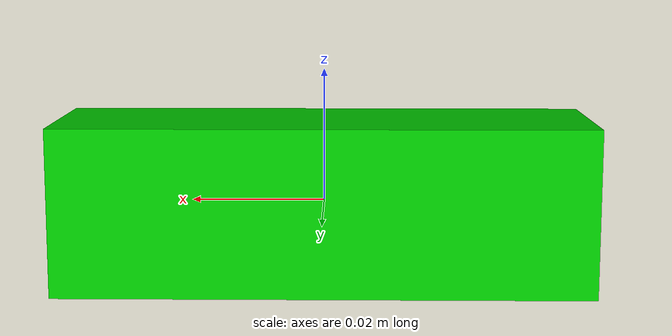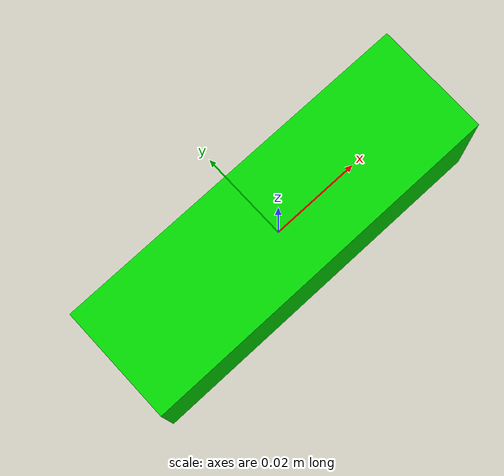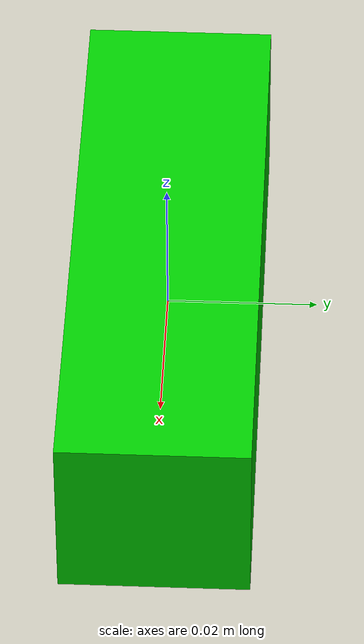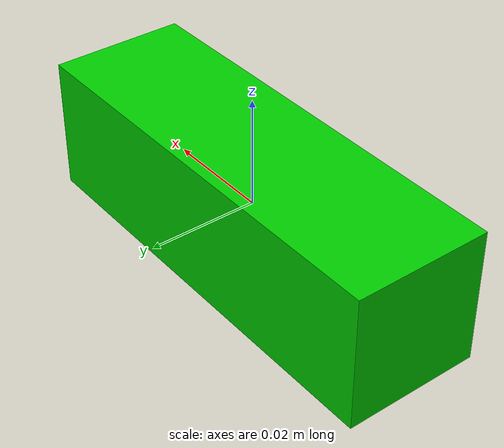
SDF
<?xml version="1.0" ?>
<sdf version="1.6">
  <model name="green_solid">
    <plugin filename="gz-sim-pose-publisher-system" name="gz::sim::systems::PosePublisher">
      <publish_link_pose>false</publish_link_pose>
      <use_pose_vector_msg>false</use_pose_vector_msg>
      <static_publisher>true</static_publisher>
      <static_update_frequency>30</static_update_frequency>
    </plugin>
    <link name="link">
      <inertial>
        <mass>0.1</mass>
        <inertia>
          <ixx>0.00005</ixx>
          <iyy>0.00008</iyy>
          <izz>0.00005</izz>
        </inertia>
      </inertial>
      <collision name="collision">
        <geometry>
          <box>
            <size>0.08 0.025 0.025</size>
          </box>
        </geometry>
      </collision>
      <visual name="visual">
        <geometry>
          <box>
            <size>0.08 0.025 0.025</size>
          </box>
        </geometry>
        <material>
          <ambient>0 0.6 0 1</ambient>
          <diffuse>0 0.8 0 1</diffuse>
          <specular>0.2 0.2 0.2 1</specular>
        </material>
      </visual>
    </link>
  </model>
</sdf>
